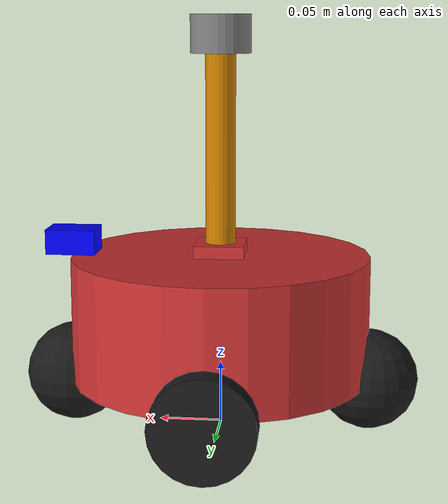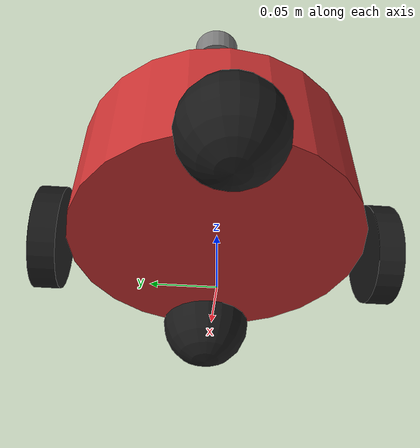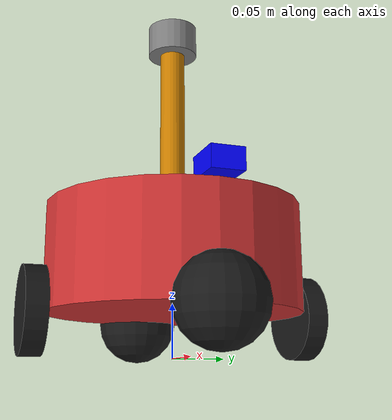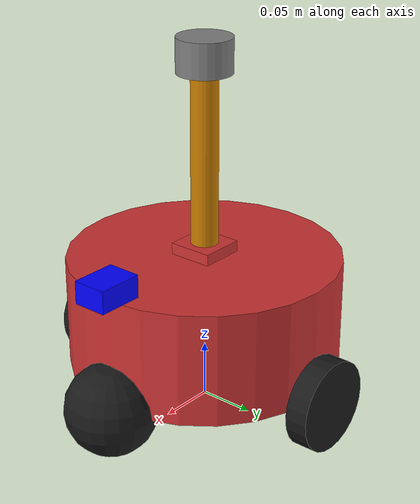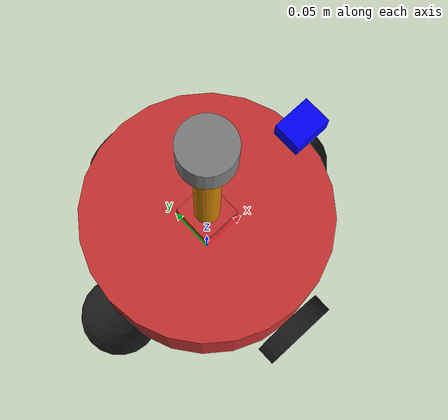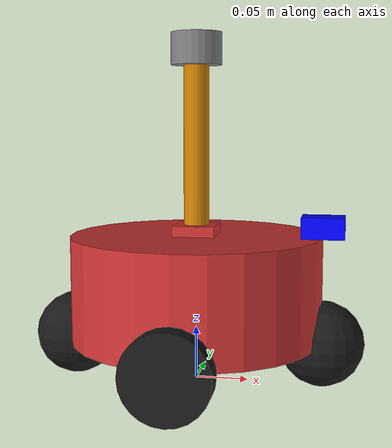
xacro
<?xml version="1.0"?>
<robot name="car_to" xmlns:xacro="http://wiki.ros.org/xacro">
  <xacro:include filename="$(find lianxi_gazebo)/urdf/car_base.urdf.xacro"/>
  <xacro:include filename="$(find lianxi_gazebo)/urdf/camera.urdf.xacro"/>
  <xacro:include filename="$(find lianxi_gazebo)/urdf/laser.urdf.xacro"/>

</robot>

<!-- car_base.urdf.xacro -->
<xacro:macro name="car_base_block" xmlns:xacro="http://wiki.ros.org/xacro">
<xacro:property name="base_radius" value="0.12"/>
<xacro:property name="base_length" value="0.10"/>
<xacro:property name="base_mass" value="2.0"/>
<xacro:property name="wheel_radius" value="0.04"/>
<xacro:property name="wheel_length" value="0.02"/>
<xacro:property name="wheel_mass" value="0.15"/>
<xacro:property name="base_link_world_z" value="${wheel_radius + base_length / 2}"/>
<xacro:property name="wheel_local_z" value="${wheel_radius - base_link_world_z}"/>
<xacro:macro name="cylinder_inertial_matrix" params="m r h">
<inertial>
<mass value="${m}"/>
<inertia ixx="${m*(3*r*r + h*h)/12}" ixy="0.0" ixz="0.0"
iyy="${m*(3*r*r + h*h)/12}" iyz="0.0"
izz="${m*r*r/2}"/>
</inertial>
</xacro:macro>
<link name="base_footprint">
<visual>
<geometry>
<sphere radius="0.001"/>
</geometry>
</visual>
</link>
<joint name="base_link_joint" type="fixed">
<parent link="base_footprint"/>
<child link="base_link"/>
<origin xyz="0 0 ${base_link_world_z}" rpy="0 0 0"/>
</joint>
<link name="base_link">
<visual>
<geometry>
<cylinder radius="${base_radius}" length="${base_length}"/>
</geometry>
<origin xyz="0 0 0" rpy="0 0 0"/>
<material name="base_color">
<color rgba="0.8 0.2 0.2 1.0"/>
</material>
</visual>
<collision>
<geometry>
<cylinder radius="${base_radius}" length="${base_length}"/>
</geometry>
<origin xyz="0 0 0" rpy="0 0 0"/>
</collision>
<xacro:cylinder_inertial_matrix m="${base_mass}" r="${base_radius}" h="${base_length}"/>
</link>
<material name="wheel_color">
<color rgba="0.1 0.1 0.1 1.0"/>
</material>
<link name="left_wheel">
<visual>
<geometry>
<cylinder radius="${wheel_radius}" length="${wheel_length}"/>
</geometry>
<origin xyz="0 0 0" rpy="1.57075 0 0"/>
<material name="wheel_color"/>
</visual>
<collision>
<geometry>
<cylinder radius="${wheel_radius}" length="${wheel_length}"/>
</geometry>
<origin xyz="0 0 0" rpy="1.57075 0 0"/>
</collision>
<xacro:cylinder_inertial_matrix m="${wheel_mass}" r="${wheel_radius}" h="${wheel_length}"/>
</link>
<joint name="left_wheel_joint" type="continuous">
<parent link="base_link"/>
<child link="left_wheel"/>
<origin xyz="0 0.13 ${wheel_local_z}" rpy="0 0 0"/>
<axis xyz="0 1 0"/>
</joint>
<link name="right_wheel">
<visual>
<geometry>
<cylinder radius="${wheel_radius}" length="${wheel_length}"/>
</geometry>
<origin xyz="0 0 0" rpy="1.57075 0 0"/>
<material name="wheel_color"/>
</visual>
<collision>
<geometry>
<cylinder radius="${wheel_radius}" length="${wheel_length}"/>
</geometry>
<origin xyz="0 0 0" rpy="1.57075 0 0"/>
</collision>
<xacro:cylinder_inertial_matrix m="${wheel_mass}" r="${wheel_radius}" h="${wheel_length}"/>
</link>
<joint name="right_wheel_joint" type="continuous">
<parent link="base_link"/>
<child link="right_wheel"/>
<origin xyz="0 -0.13 ${wheel_local_z}" rpy="0 0 0"/>
<axis xyz="0 1 0"/>
</joint>
<link name="front_ball_caster">
<visual>
<geometry>
<sphere radius="${wheel_radius}"/>
</geometry>
<origin xyz="0 0 0" rpy="0 0 0"/>
<material name="wheel_color"/>
</visual>
<collision>
<geometry>
<sphere radius="${wheel_radius }"/>
</geometry>
<origin xyz="0 0 0" rpy="0 0 0"/>
</collision>
<inertial>
<mass value="${wheel_mass * 0.5}"/>
<inertia ixx="0.001" ixy="0.0" ixz="0.0"
iyy="0.001" iyz="0.0"
izz="0.001"/>
</inertial>
</link>
<joint name="front_ball_caster_joint" type="fixed">
<parent link="base_link"/>
<child link="front_ball_caster"/>
<origin xyz="0.12 0 ${wheel_local_z}" rpy="0 0 0"/>
</joint>
<link name="rear_ball_caster">
<visual>
<geometry>
<sphere radius="${wheel_radius}"/>
</geometry>
<origin xyz="0 0 0" rpy="0 0 0"/>
<material name="wheel_color"/>
</visual>
<collision>
<geometry>
<sphere radius="${wheel_radius}"/>
</geometry>
<origin xyz="0 0 0" rpy="0 0 0"/>
</collision>
<inertial>
<mass value="${wheel_mass * 0.5}"/>
<inertia ixx="0.001" ixy="0.0" ixz="0.0"
iyy="0.001" iyz="0.0"
izz="0.001"/>
</inertial>
</link>
<joint name="rear_ball_caster_joint" type="fixed">
<parent link="base_link"/>
<child link="rear_ball_caster"/>
<origin xyz="-0.12 0 ${wheel_local_z }" rpy="0 0 0"/>
</joint>

<!-- IMU link + joint 在这里补上 -->
<link name="imu_link">
<visual>
<geometry>
<box size="0.04 0.04 0.02"/>
</geometry>
<material name="base_color"/>
</visual>
<collision>
<geometry>
<box size="0.04 0.04 0.02"/>
</geometry>
</collision>
<inertial>
<mass value="0.01"/>
<inertia ixx="0.00001" ixy="0.0" ixz="0.0"
iyy="0.00001" iyz="0.0"
izz="0.00001"/>
</inertial>
</link>
<joint name="imu_joint" type="fixed">
<parent link="base_link"/>
<child link="imu_link"/>
<origin xyz="0 0 0.05" rpy="0 0 0"/>
</joint>

<gazebo>
<plugin name="diff_drive_controller" filename="libgazebo_ros_diff_drive.so">
<leftJoint>left_wheel_joint</leftJoint>
<rightJoint>right_wheel_joint</rightJoint>
<commandTopic>/cmd_vel</commandTopic>
<odometryTopic>/odom</odometryTopic>
<odometryFrame>odom</odometryFrame>
<robotBaseFrame>base_footprint</robotBaseFrame>
<publishTf>true</publishTf>
<publishOdomTF>true</publishOdomTF>
<publishWheelJointState>true</publishWheelJointState>
<wheelSeparation>0.26</wheelSeparation>
<wheelDiameter>0.08</wheelDiameter>
<wheelAcceleration>1.0</wheelAcceleration>
<wheelTorque>20</wheelTorque>
<updateRate>20</updateRate>
</plugin>
</gazebo>

<!-- 平级，正确 -->
<gazebo reference="imu_link">
<sensor name="imu_sensor" type="imu">
<always_on>true</always_on>
<update_rate>100</update_rate>
<visualize>false</visualize>
<plugin filename="libgazebo_ros_imu_sensor.so" name="imu_plugin">
<topicName>/imu</topicName>
<frameName>imu_link</frameName>
<gaussianNoise>0.0001</gaussianNoise>
</plugin>
</sensor>
</gazebo>

</xacro:macro>

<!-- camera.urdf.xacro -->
<xacro:macro name="camera_block" xmlns:xacro="[http://wiki.ros.org/xacro](http://wiki.ros.org/xacro)">
<xacro:property name="camera_length" value="0.04"/>
<xacro:property name="camera_width" value="0.03"/>
<xacro:property name="camera_height" value="0.02"/>
<xacro:property name="camera_mass" value="0.02"/>

<link name="camera">
<visual>
<geometry>
<box size="${camera_length} ${camera_width} ${camera_height}"/>
</geometry>
<origin xyz="0 0 0" rpy="0 0 0"/>
<material name="camera_color">
<color rgba="0.0 0.0 1.0 1.0"/>
</material>
</visual>
<collision>
<geometry>
<box size="${camera_length} ${camera_width} ${camera_height}"/>
</geometry>
<origin xyz="0 0 0" rpy="0 0 0"/>
</collision>
<inertial>
<mass value="${camera_mass}"/>
<inertia ixx="${camera_mass*(camera_height*camera_height + camera_width*camera_width)/12}"
ixy="0.0" ixz="0.0"
iyy="${camera_mass*(camera_length*camera_length + camera_height*camera_height)/12}"
iyz="0.0"
izz="${camera_mass*(camera_length*camera_length + camera_width*camera_width)/12}"/>
</inertial>
</link>
<joint name="camera_joint" type="fixed">
<parent link="base_link"/>
<child link="camera"/>
<origin xyz="0.12 0 ${base_length / 2 + camera_height / 2}" rpy="0 0 0"/>
</joint>
<gazebo reference="camera">
<material>Gazebo/Blue</material>
<sensor type="camera" name="camera_sensor">
    <update_rate>30</update_rate>
    <camera>
      <horizontal_fov>1.57</horizontal_fov>
      <image>
        <width>640</width>
        <height>480</height>
        <format>R8G8B8</format>
      </image>
      <clip>
        <near>0.01</near>
        <far>10.0</far>
      </clip>
    </camera>
    <plugin name="camera_controller" filename="libgazebo_ros_camera.so">
      <alwaysOn>true</alwaysOn>
      <updateRate>30.0</updateRate>
      <cameraName>camera</cameraName>
      <imageTopicName>rgb/image_raw</imageTopicName>
      <cameraInfoTopicName>rgb/camera_info</cameraInfoTopicName>
      <frameName>camera</frameName>
      <hackBaseline>0.0</hackBaseline>
      <distortionK1>0.0</distortionK1>
      <distortionK2>0.0</distortionK2>
      <distortionK3>0.0</distortionK3>
      <distortionT1>0.0</distortionT1>
      <distortionT2>0.0</distortionT2>
    </plugin>
</sensor>
</gazebo>

</xacro:macro>

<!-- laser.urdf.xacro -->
<xacro:macro name="laser_block" xmlns:xacro="http://wiki.ros.org/xacro">
<xacro:property name="support_radius" value="0.012"/>
<xacro:property name="support_length" value="0.16"/>
<xacro:property name="support_mass" value="0.02"/>
<xacro:property name="laser_radius" value="0.024"/>
<xacro:property name="laser_length" value="0.03"/>
<xacro:property name="laser_mass" value="0.05"/>
<link name="support">
<visual>
<geometry>
<cylinder radius="${support_radius}" length="${support_length}"/>
</geometry>
<origin xyz="0 0 0" rpy="0 0 0"/>
<material name="support_color">
<color rgba="0.8 0.5 0.0 1.0"/>
</material>
</visual>
<collision>
<geometry>
<cylinder radius="${support_radius}" length="${support_length}"/>
</geometry>
<origin xyz="0 0 0" rpy="0 0 0"/>
</collision>
<inertial>
<mass value="${support_mass}"/>
<inertia ixx="${support_mass*(3*support_radius*support_radius + support_length*support_length)/12}"
ixy="0.0" ixz="0.0"
iyy="${support_mass*(3*support_radius*support_radius + support_length*support_length)/12}"
iyz="0.0"
izz="${support_mass*support_radius*support_radius/2}"/>
</inertial>
</link>
<joint name="support_joint" type="fixed">
<parent link="base_link"/>
<child link="support"/>
<origin xyz="0 0 ${base_length/2 + support_length/2}" rpy="0 0 0"/>
</joint>
<link name="laser">
<visual>
<geometry>
<cylinder radius="${laser_radius}" length="${laser_length}"/>
</geometry>
<origin xyz="0 0 0" rpy="0 0 0"/>
<material name="laser_color">
<color rgba="0.5 0.5 0.5 1.0"/>
</material>
</visual>
<collision>
<geometry>
<cylinder radius="${laser_radius}" length="${laser_length}"/>
</geometry>
<origin xyz="0 0 0" rpy="0 0 0"/>
</collision>
<inertial>
<mass value="${laser_mass}"/>
<inertia ixx="${laser_mass*(3*laser_radius*laser_radius + laser_length*laser_length)/12}"
ixy="0.0" ixz="0.0"
iyy="${laser_mass*(3*laser_radius*laser_radius + laser_length*laser_length)/12}"
iyz="0.0"
izz="${laser_mass*laser_radius*laser_radius/2}"/>
</inertial>
</link>
<joint name="laser_joint" type="fixed">
<parent link="support"/>
<child link="laser"/>
<origin xyz="0 0 ${support_length/2 + laser_length/2}" rpy="0 0 0"/>
</joint>
<gazebo reference="support">
<material>Gazebo/Orange</material>
</gazebo>
<gazebo reference="laser">
<sensor type="ray" name="laser_sensor">
<pose>0 0 0 0 0 0</pose>
<visualize>true</visualize>
<update_rate>10</update_rate>
<ray>
<scan>
<horizontal>
<samples>360</samples>
<resolution>1</resolution>
<min_angle>-3.14159</min_angle>
<max_angle>3.14159</max_angle>
</horizontal>
</scan>
<range>
<min>0.10</min>
<max>10.0</max>
<resolution>0.01</resolution>
</range>
</ray>
<plugin name="gazebo_ros_laser_controller" filename="libgazebo_ros_laser.so">
<topicName>/scan</topicName>
<frameName>laser</frameName>
</plugin>
</sensor>
</gazebo>

</xacro:macro>
